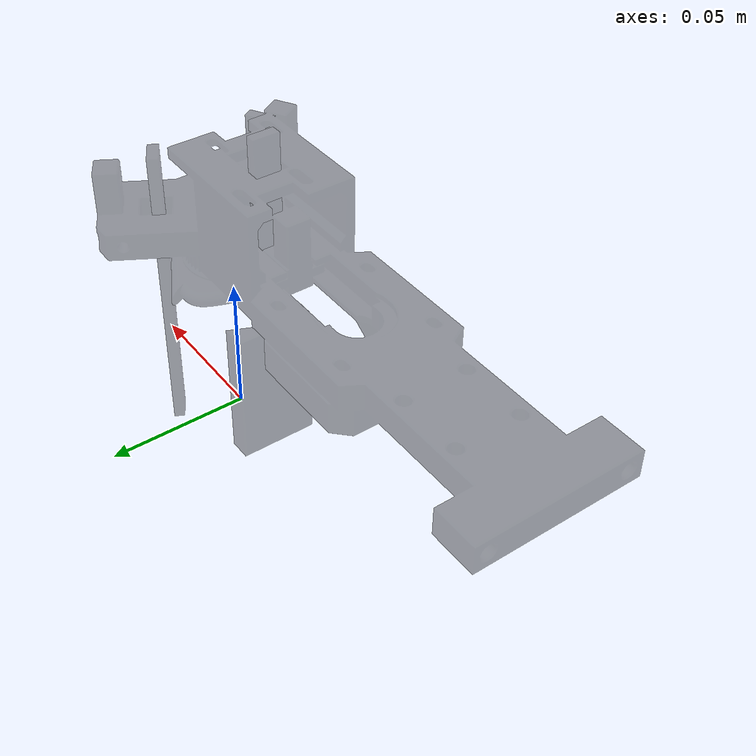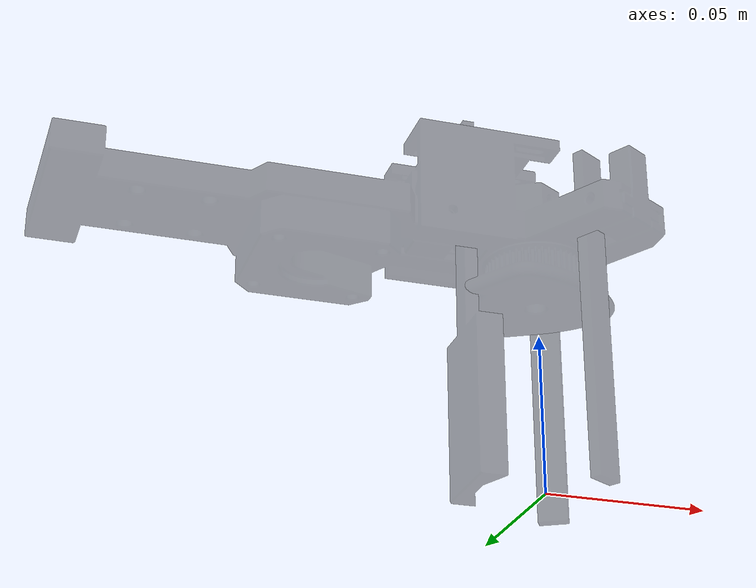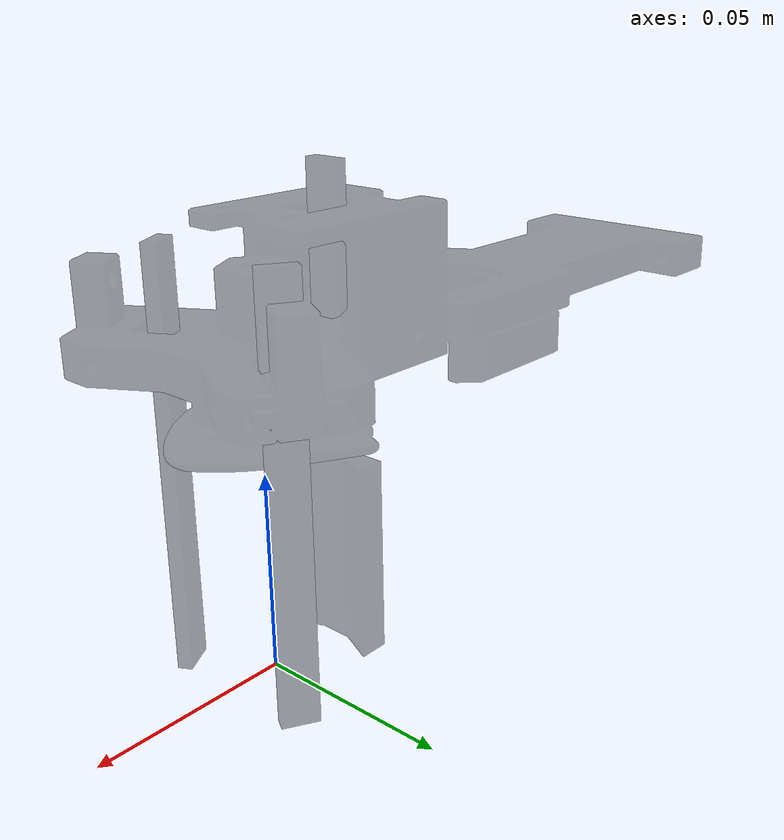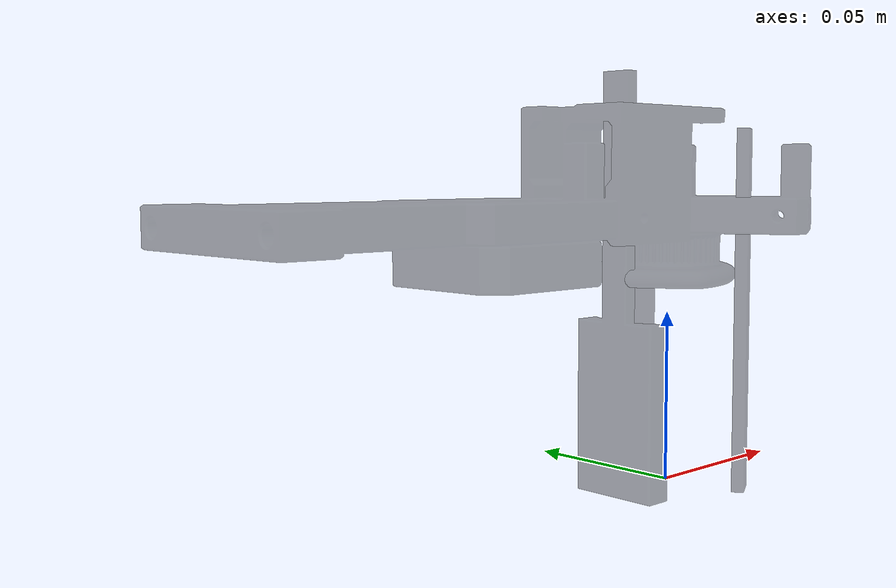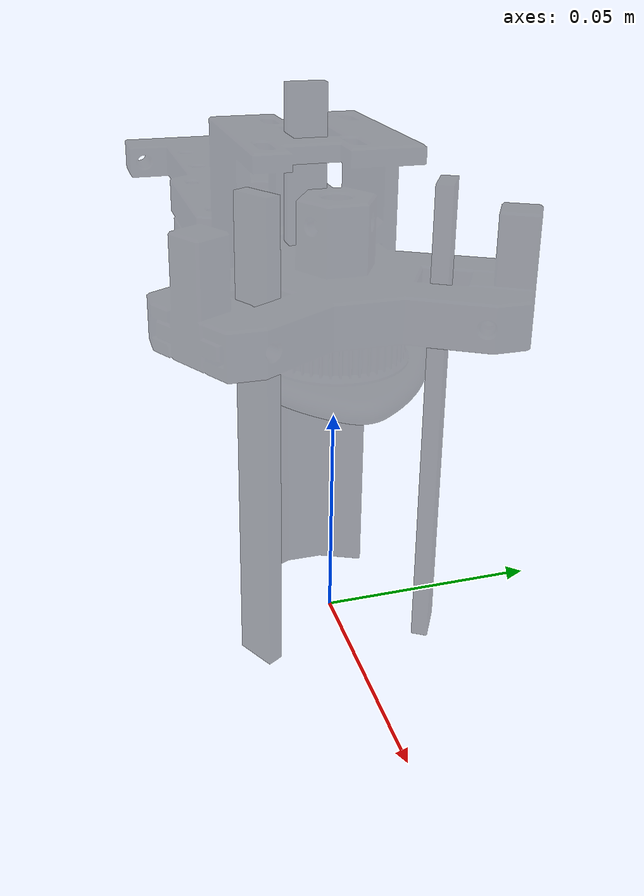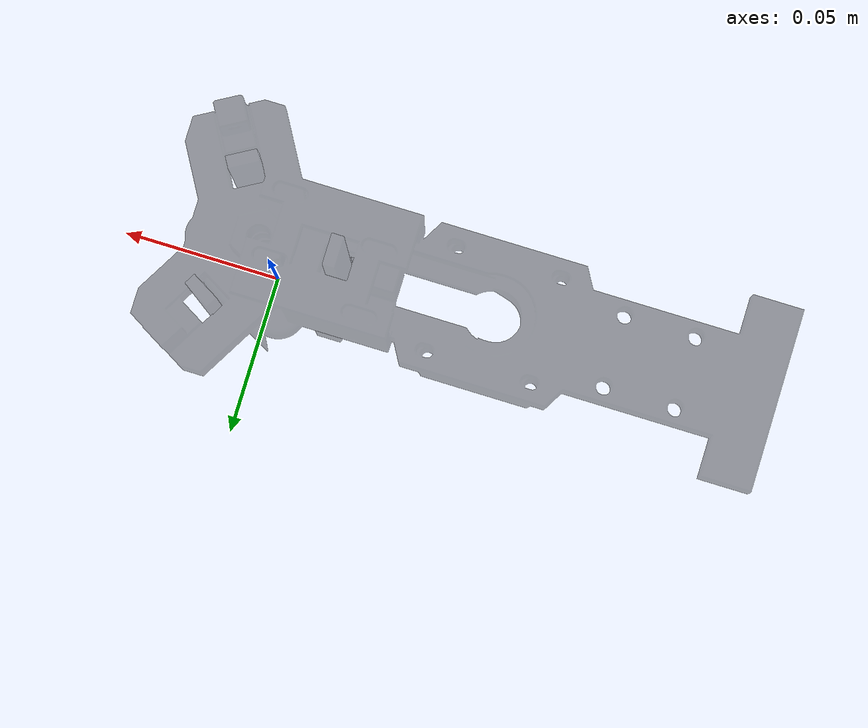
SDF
<?xml version="1.0" ?>
<sdf version="1.4">
  <model name="carologistics-gripper">
    <static>false</static>
    <link name="gripper-hand">
      <gravity>false</gravity>
      <pose>0 0 0 0 0 0</pose>
      <!-- Origin is where the puck should be gripped -->
      <visual name="visual">
        <geometry>
          <mesh>
            <uri>model://carologistics/carologistics-gripper/meshes/gripper_base.dae</uri>
            <scale>0.001 0.001 0.001</scale>
          </mesh>
        </geometry>
        <material>
          <ambient>0.0 0.0 0.0 0.4</ambient>
        </material>
        <cast_shadows>false</cast_shadows>
      </visual>
      <inertial>
        <mass>0.1</mass>
      </inertial>
    </link>

    <link name="back-finger">
      <gravity>false</gravity>
      <pose>-0.0228 -0.0004 0.079 0 0 0</pose>
      <visual name="visual">
        <geometry>
          <mesh>
            <uri>model://carologistics/carologistics-gripper/meshes/back_finger.dae</uri>
            <scale>0.001 0.001 0.001</scale>
          </mesh>
        </geometry>
        <material>
          <ambient>0.0 0.0 0.0 0.4</ambient>
        </material>
        <cast_shadows>false</cast_shadows>
      </visual>
      <inertial>
        <mass>0.02</mass>
      </inertial>
      <collision name="collision-left">
        <pose>0.00207 0.01 -0.0506 0 0 -0.4</pose>
        <geometry>
          <box>
            <size>0.00425 0.0095 0.06</size>
          </box>
        </geometry>
      </collision>
      <collision name="collision-middle">
        <pose>-0.00007 0.0002 -0.0506 0 0 0</pose>
        <geometry>
          <box>
            <size>0.00425 0.0083 0.06</size>
          </box>
        </geometry>
      </collision>
      <collision name="collision-right">
        <pose>0.00207 -0.0096 -0.0506 0 0 0.4</pose>
        <geometry>
          <box>
            <size>0.00425 0.0095 0.06</size>
          </box>
        </geometry>
      </collision>
    </link>
    <joint name="back-finger-hinge" type="revolute">
      <pose>0 0 0 0 0 0</pose>
      <parent>gripper-hand</parent>
      <child>back-finger</child>
      <axis>
        <xyz>0 1 0</xyz>
        <limit>
          <lower>0</lower>
          <upper>0.349066</upper>
          <effort>30</effort>
          <velocity>1.0</velocity>
        </limit>
      </axis>
    </joint>

    <link name="left-finger">
      <gravity>false</gravity>
      <pose>0.0102 0.0192 0.078 0 0 1.04719</pose>
      <visual name="visual">
        <geometry>
          <mesh>
            <uri>model://carologistics/carologistics-gripper/meshes/finger.dae</uri>
            <scale>0.001 0.001 0.001</scale>
          </mesh>
        </geometry>
        <material>
          <ambient>0.0 0.0 0.0 0.4</ambient>
        </material>
        <cast_shadows>false</cast_shadows>
      </visual>
      <inertial>
        <mass>0.02</mass>
      </inertial>
      <collision name="collision">
        <pose>0 0 -0.0496 0 0 0</pose>
        <geometry>
          <box>
            <size>0.004 0.0092 0.06</size>
          </box>
        </geometry>
      </collision>
    </link>
    <joint name="left-finger-hinge" type="revolute">
      <pose>0 0 0 0 0 1.04719</pose>
      <parent>gripper-hand</parent>
      <child>left-finger</child>
      <axis>
        <xyz>0 1 0</xyz>
        <limit>
          <lower>0</lower>
          <upper>0.2618</upper>
          <effort>30</effort>
          <velocity>1.0</velocity>
        </limit>
      </axis>
    </joint>

    <link name="right-finger">
      <gravity>false</gravity>
      <pose>0.0102 -0.0192 0.078 0 0 -1.04719</pose>
      <visual name="visual">
        <geometry>
          <mesh>
            <uri>model://carologistics/carologistics-gripper/meshes/finger.dae</uri>
            <scale>0.001 0.001 0.001</scale>
          </mesh>
        </geometry>
        <material>
          <ambient>0.0 0.0 0.0 0.4</ambient>
        </material>
        <cast_shadows>false</cast_shadows>
      </visual>
      <inertial>
        <mass>0.02</mass>
      </inertial>
      <collision name="collision">
        <pose>0 0 -0.0496 0 0 0</pose>
        <geometry>
          <box>
            <size>0.004 0.0092 0.06</size>
          </box>
        </geometry>
      </collision>
    </link>
    <joint type="revolute" name="right-finger-hinge">
      <pose>0 0 0 0 0 0</pose>
      <parent>gripper-hand</parent>
      <child>right-finger</child>
      <axis>
        <xyz>0 1 0</xyz>
        <limit>
          <lower>0</lower>
          <upper>0.2618</upper>
          <effort>30</effort>
          <velocity>1.0</velocity>
        </limit>
      </axis>
    </joint>

    <plugin name="Gripper" filename="libgripper.so"/>
  </model>
</sdf>
